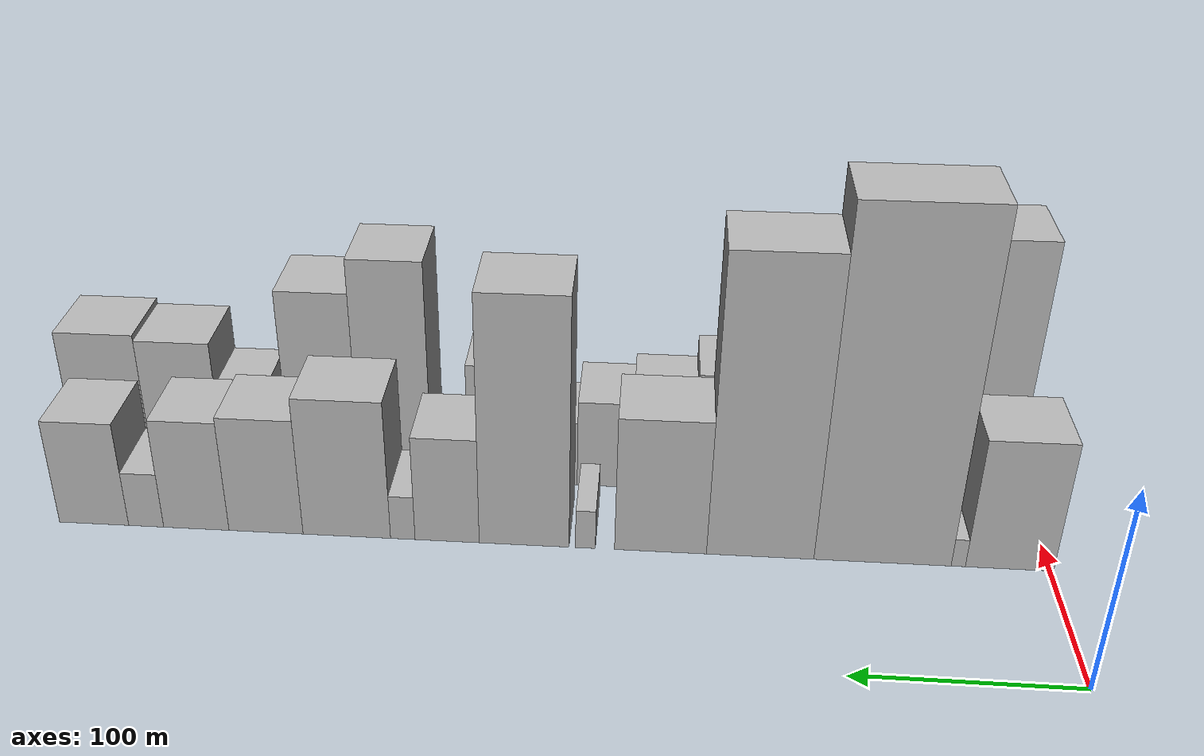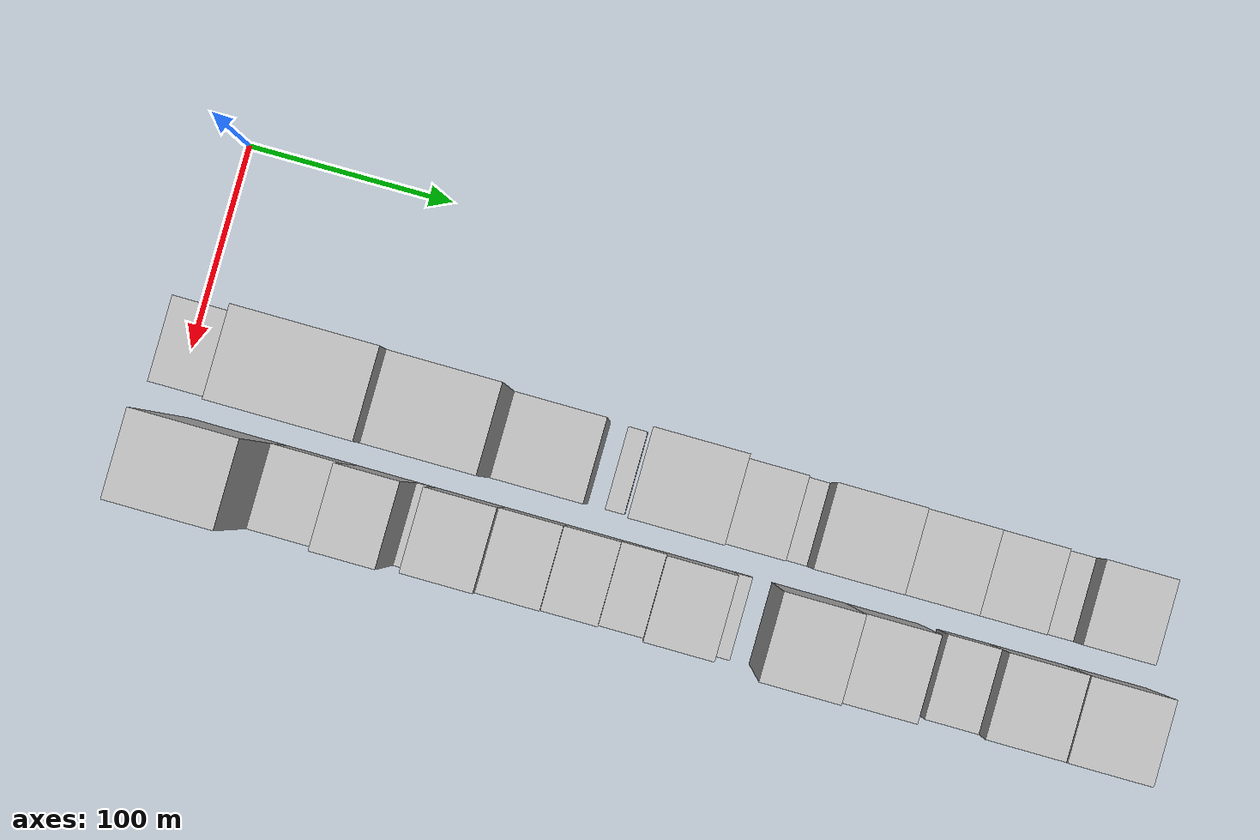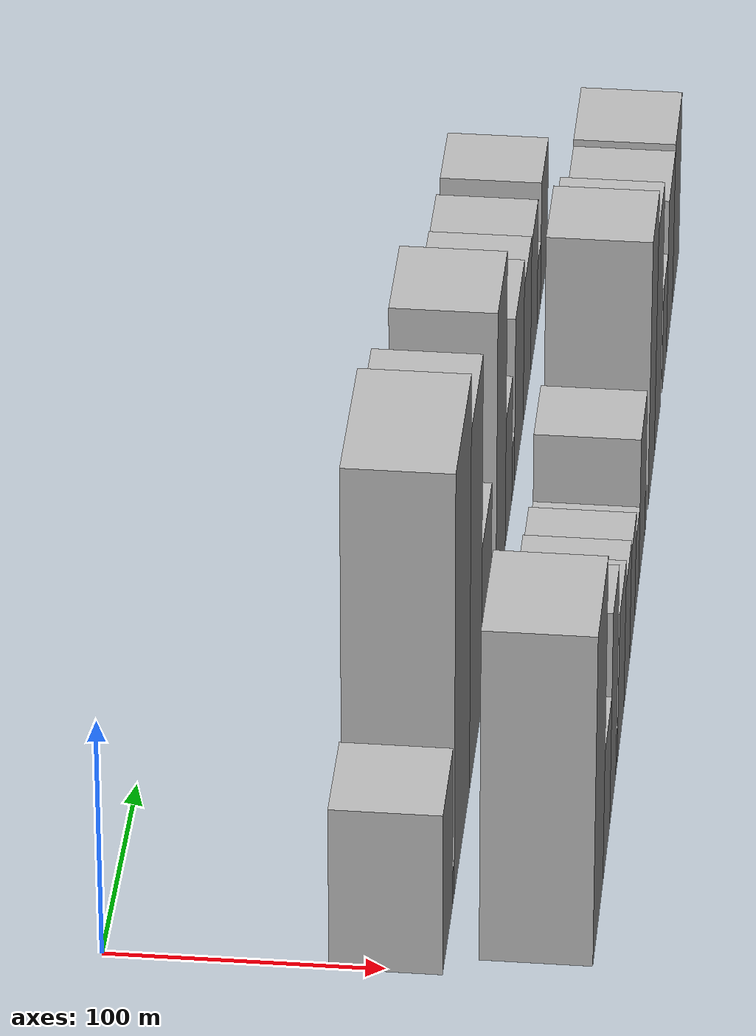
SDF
<sdf version="1.6">
 <world name="default">
  <model name="building_14">
   <static>1</static>
   <pose>100.0000 18.4585 0 0.000000 0.000000 0.000000</pose>
   <link name="link">
    <pose>0 0 34.50 0 0 0</pose>
    <collision name="collision"><geometry><box><size>40.0000 39.9605 69.0000</size></box></geometry></collision>
    <visual name="visual">
     <cast_shadows>0</cast_shadows>
     <geometry><box><size>40.0000 39.9605 69.0000</size></box></geometry>
     <material>
      <script>
       <uri>model://HANNAS_wall/materials/scripts</uri>
       <uri>model://HANNAS_wall/materials/textures</uri>
       <name>vrc/HANNAS_wall</name>
      </script>
     </material>
    </visual>
   </link>
  </model>
  <model name="building_15">
   <static>1</static>
   <pose>100.0000 41.6626 0 0.000000 0.000000 0.000000</pose>
   <link name="link">
    <pose>0 0 7.50 0 0 0</pose>
    <collision name="collision"><geometry><box><size>40.0000 6.4477 15.0000</size></box></geometry></collision>
    <visual name="visual">
     <cast_shadows>0</cast_shadows>
     <geometry><box><size>40.0000 6.4477 15.0000</size></box></geometry>
     <material>
      <script>
       <uri>model://HANNAS_wall/materials/scripts</uri>
       <uri>model://HANNAS_wall/materials/textures</uri>
       <name>vrc/HANNAS_wall</name>
      </script>
     </material>
    </visual>
   </link>
  </model>
  <model name="building_16">
   <static>1</static>
   <pose>100.0000 76.2940 0 0.000000 0.000000 0.000000</pose>
   <link name="link">
    <pose>0 0 90.00 0 0 0</pose>
    <collision name="collision"><geometry><box><size>40.0000 62.8152 180.0000</size></box></geometry></collision>
    <visual name="visual">
     <cast_shadows>0</cast_shadows>
     <geometry><box><size>40.0000 62.8152 180.0000</size></box></geometry>
     <material>
      <script>
       <uri>model://HANNAS_wall/materials/scripts</uri>
       <uri>model://HANNAS_wall/materials/textures</uri>
       <name>vrc/HANNAS_wall</name>
      </script>
     </material>
    </visual>
   </link>
  </model>
  <model name="building_17">
   <static>1</static>
   <pose>100.0000 132.5691 0 0.000000 0.000000 0.000000</pose>
   <link name="link">
    <pose>0 0 78.00 0 0 0</pose>
    <collision name="collision"><geometry><box><size>40.0000 49.7349 156.0000</size></box></geometry></collision>
    <visual name="visual">
     <cast_shadows>0</cast_shadows>
     <geometry><box><size>40.0000 49.7349 156.0000</size></box></geometry>
     <material>
      <script>
       <uri>model://HANNAS_wall/materials/scripts</uri>
       <uri>model://HANNAS_wall/materials/textures</uri>
       <name>vrc/HANNAS_wall</name>
      </script>
     </material>
    </visual>
   </link>
  </model>
  <model name="building_18">
   <static>1</static>
   <pose>100.0000 178.9139 0 0.000000 0.000000 0.000000</pose>
   <link name="link">
    <pose>0 0 36.00 0 0 0</pose>
    <collision name="collision"><geometry><box><size>40.0000 42.9548 72.0000</size></box></geometry></collision>
    <visual name="visual">
     <cast_shadows>0</cast_shadows>
     <geometry><box><size>40.0000 42.9548 72.0000</size></box></geometry>
     <material>
      <script>
       <uri>model://HANNAS_wall/materials/scripts</uri>
       <uri>model://HANNAS_wall/materials/textures</uri>
       <name>vrc/HANNAS_wall</name>
      </script>
     </material>
    </visual>
   </link>
  </model>
  <model name="building_19">
   <static>1</static>
   <pose>100.0000 214.0822 0 0.000000 0.000000 0.000000</pose>
   <link name="link">
    <pose>0 0 10.50 0 0 0</pose>
    <collision name="collision"><geometry><box><size>40.0000 9.3818 21.0000</size></box></geometry></collision>
    <visual name="visual">
     <cast_shadows>0</cast_shadows>
     <geometry><box><size>40.0000 9.3818 21.0000</size></box></geometry>
     <material>
      <script>
       <uri>model://HANNAS_wall/materials/scripts</uri>
       <uri>model://HANNAS_wall/materials/textures</uri>
       <name>vrc/HANNAS_wall</name>
      </script>
     </material>
    </visual>
   </link>
  </model>
  <model name="building_20">
   <static>1</static>
   <pose>100.0000 243.0363 0 0.000000 0.000000 0.000000</pose>
   <link name="link">
    <pose>0 0 66.00 0 0 0</pose>
    <collision name="collision"><geometry><box><size>40.0000 42.5264 132.0000</size></box></geometry></collision>
    <visual name="visual">
     <cast_shadows>0</cast_shadows>
     <geometry><box><size>40.0000 42.5264 132.0000</size></box></geometry>
     <material>
      <script>
       <uri>model://HANNAS_wall/materials/scripts</uri>
       <uri>model://HANNAS_wall/materials/textures</uri>
       <name>vrc/HANNAS_wall</name>
      </script>
     </material>
    </visual>
   </link>
  </model>
  <model name="building_21">
   <static>1</static>
   <pose>100.0000 279.5815 0 0.000000 0.000000 0.000000</pose>
   <link name="link">
    <pose>0 0 28.50 0 0 0</pose>
    <collision name="collision"><geometry><box><size>40.0000 30.5641 57.0000</size></box></geometry></collision>
    <visual name="visual">
     <cast_shadows>0</cast_shadows>
     <geometry><box><size>40.0000 30.5641 57.0000</size></box></geometry>
     <material>
      <script>
       <uri>model://HANNAS_wall/materials/scripts</uri>
       <uri>model://HANNAS_wall/materials/textures</uri>
       <name>vrc/HANNAS_wall</name>
      </script>
     </material>
    </visual>
   </link>
  </model>
  <model name="building_22">
   <static>1</static>
   <pose>100.0000 300.7286 0 0.000000 0.000000 0.000000</pose>
   <link name="link">
    <pose>0 0 12.00 0 0 0</pose>
    <collision name="collision"><geometry><box><size>40.0000 11.7300 24.0000</size></box></geometry></collision>
    <visual name="visual">
     <cast_shadows>0</cast_shadows>
     <geometry><box><size>40.0000 11.7300 24.0000</size></box></geometry>
     <material>
      <script>
       <uri>model://HANNAS_wall/materials/scripts</uri>
       <uri>model://HANNAS_wall/materials/textures</uri>
       <name>vrc/HANNAS_wall</name>
      </script>
     </material>
    </visual>
   </link>
  </model>
  <model name="building_23">
   <static>1</static>
   <pose>100.0000 327.6474 0 0.000000 0.000000 0.000000</pose>
   <link name="link">
    <pose>0 0 37.50 0 0 0</pose>
    <collision name="collision"><geometry><box><size>40.0000 42.1075 75.0000</size></box></geometry></collision>
    <visual name="visual">
     <cast_shadows>0</cast_shadows>
     <geometry><box><size>40.0000 42.1075 75.0000</size></box></geometry>
     <material>
      <script>
       <uri>model://HANNAS_wall/materials/scripts</uri>
       <uri>model://HANNAS_wall/materials/textures</uri>
       <name>vrc/HANNAS_wall</name>
      </script>
     </material>
    </visual>
   </link>
  </model>
  <model name="building_24">
   <static>1</static>
   <pose>100.0000 366.6639 0 0.000000 0.000000 0.000000</pose>
   <link name="link">
    <pose>0 0 31.50 0 0 0</pose>
    <collision name="collision"><geometry><box><size>40.0000 35.9255 63.0000</size></box></geometry></collision>
    <visual name="visual">
     <cast_shadows>0</cast_shadows>
     <geometry><box><size>40.0000 35.9255 63.0000</size></box></geometry>
     <material>
      <script>
       <uri>model://HANNAS_wall/materials/scripts</uri>
       <uri>model://HANNAS_wall/materials/textures</uri>
       <name>vrc/HANNAS_wall</name>
      </script>
     </material>
    </visual>
   </link>
  </model>
  <model name="building_25">
   <static>1</static>
   <pose>100.0000 400.5764 0 0.000000 0.000000 0.000000</pose>
   <link name="link">
    <pose>0 0 30.00 0 0 0</pose>
    <collision name="collision"><geometry><box><size>40.0000 31.8995 60.0000</size></box></geometry></collision>
    <visual name="visual">
     <cast_shadows>0</cast_shadows>
     <geometry><box><size>40.0000 31.8995 60.0000</size></box></geometry>
     <material>
      <script>
       <uri>model://HANNAS_wall/materials/scripts</uri>
       <uri>model://HANNAS_wall/materials/textures</uri>
       <name>vrc/HANNAS_wall</name>
      </script>
     </material>
    </visual>
   </link>
  </model>
  <model name="building_26">
   <static>1</static>
   <pose>100.0000 425.1139 0 0.000000 0.000000 0.000000</pose>
   <link name="link">
    <pose>0 0 15.00 0 0 0</pose>
    <collision name="collision"><geometry><box><size>40.0000 17.1756 30.0000</size></box></geometry></collision>
    <visual name="visual">
     <cast_shadows>0</cast_shadows>
     <geometry><box><size>40.0000 17.1756 30.0000</size></box></geometry>
     <material>
      <script>
       <uri>model://HANNAS_wall/materials/scripts</uri>
       <uri>model://HANNAS_wall/materials/textures</uri>
       <name>vrc/HANNAS_wall</name>
      </script>
     </material>
    </visual>
   </link>
  </model>
  <model name="building_27">
   <static>1</static>
   <pose>100.0000 450.7416 0 0.000000 0.000000 0.000000</pose>
   <link name="link">
    <pose>0 0 28.50 0 0 0</pose>
    <collision name="collision"><geometry><box><size>40.0000 34.0799 57.0000</size></box></geometry></collision>
    <visual name="visual">
     <cast_shadows>0</cast_shadows>
     <geometry><box><size>40.0000 34.0799 57.0000</size></box></geometry>
     <material>
      <script>
       <uri>model://HANNAS_wall/materials/scripts</uri>
       <uri>model://HANNAS_wall/materials/textures</uri>
       <name>vrc/HANNAS_wall</name>
      </script>
     </material>
    </visual>
   </link>
  </model>
  <model name="building_42">
   <static>1</static>
   <pose>152.0000 32.6572 0 0.000000 0.000000 0.000000</pose>
   <link name="link">
    <pose>0 0 70.50 0 0 0</pose>
    <collision name="collision"><geometry><box><size>40.0000 48.8478 141.0000</size></box></geometry></collision>
    <visual name="visual">
     <cast_shadows>0</cast_shadows>
     <geometry><box><size>40.0000 48.8478 141.0000</size></box></geometry>
     <material>
      <script>
       <uri>model://HANNAS_wall/materials/scripts</uri>
       <uri>model://HANNAS_wall/materials/textures</uri>
       <name>vrc/HANNAS_wall</name>
      </script>
     </material>
    </visual>
   </link>
  </model>
  <model name="building_43">
   <static>1</static>
   <pose>152.0000 74.1489 0 0.000000 0.000000 0.000000</pose>
   <link name="link">
    <pose>0 0 28.50 0 0 0</pose>
    <collision name="collision"><geometry><box><size>40.0000 34.1357 57.0000</size></box></geometry></collision>
    <visual name="visual">
     <cast_shadows>0</cast_shadows>
     <geometry><box><size>40.0000 34.1357 57.0000</size></box></geometry>
     <material>
      <script>
       <uri>model://HANNAS_wall/materials/scripts</uri>
       <uri>model://HANNAS_wall/materials/textures</uri>
       <name>vrc/HANNAS_wall</name>
      </script>
     </material>
    </visual>
   </link>
  </model>
  <model name="building_44">
   <static>1</static>
   <pose>152.0000 106.3500 0 0.000000 0.000000 0.000000</pose>
   <link name="link">
    <pose>0 0 46.50 0 0 0</pose>
    <collision name="collision"><geometry><box><size>40.0000 30.2664 93.0000</size></box></geometry></collision>
    <visual name="visual">
     <cast_shadows>0</cast_shadows>
     <geometry><box><size>40.0000 30.2664 93.0000</size></box></geometry>
     <material>
      <script>
       <uri>model://HANNAS_wall/materials/scripts</uri>
       <uri>model://HANNAS_wall/materials/textures</uri>
       <name>vrc/HANNAS_wall</name>
      </script>
     </material>
    </visual>
   </link>
  </model>
  <model name="building_45">
   <static>1</static>
   <pose>152.0000 125.4410 0 0.000000 0.000000 0.000000</pose>
   <link name="link">
    <pose>0 0 9.00 0 0 0</pose>
    <collision name="collision"><geometry><box><size>40.0000 7.9155 18.0000</size></box></geometry></collision>
    <visual name="visual">
     <cast_shadows>0</cast_shadows>
     <geometry><box><size>40.0000 7.9155 18.0000</size></box></geometry>
     <material>
      <script>
       <uri>model://HANNAS_wall/materials/scripts</uri>
       <uri>model://HANNAS_wall/materials/textures</uri>
       <name>vrc/HANNAS_wall</name>
      </script>
     </material>
    </visual>
   </link>
  </model>
  <model name="building_46">
   <static>1</static>
   <pose>152.0000 146.5405 0 0.000000 0.000000 0.000000</pose>
   <link name="link">
    <pose>0 0 33.00 0 0 0</pose>
    <collision name="collision"><geometry><box><size>40.0000 34.2835 66.0000</size></box></geometry></collision>
    <visual name="visual">
     <cast_shadows>0</cast_shadows>
     <geometry><box><size>40.0000 34.2835 66.0000</size></box></geometry>
     <material>
      <script>
       <uri>model://HANNAS_wall/materials/scripts</uri>
       <uri>model://HANNAS_wall/materials/textures</uri>
       <name>vrc/HANNAS_wall</name>
      </script>
     </material>
    </visual>
   </link>
  </model>
  <model name="building_47">
   <static>1</static>
   <pose>152.0000 178.9067 0 0.000000 0.000000 0.000000</pose>
   <link name="link">
    <pose>0 0 27.00 0 0 0</pose>
    <collision name="collision"><geometry><box><size>40.0000 30.4488 54.0000</size></box></geometry></collision>
    <visual name="visual">
     <cast_shadows>0</cast_shadows>
     <geometry><box><size>40.0000 30.4488 54.0000</size></box></geometry>
     <material>
      <script>
       <uri>model://HANNAS_wall/materials/scripts</uri>
       <uri>model://HANNAS_wall/materials/textures</uri>
       <name>vrc/HANNAS_wall</name>
      </script>
     </material>
    </visual>
   </link>
  </model>
  <model name="building_48">
   <static>1</static>
   <pose>152.0000 207.6680 0 0.000000 0.000000 0.000000</pose>
   <link name="link">
    <pose>0 0 24.00 0 0 0</pose>
    <collision name="collision"><geometry><box><size>40.0000 27.0739 48.0000</size></box></geometry></collision>
    <visual name="visual">
     <cast_shadows>0</cast_shadows>
     <geometry><box><size>40.0000 27.0739 48.0000</size></box></geometry>
     <material>
      <script>
       <uri>model://HANNAS_wall/materials/scripts</uri>
       <uri>model://HANNAS_wall/materials/textures</uri>
       <name>vrc/HANNAS_wall</name>
      </script>
     </material>
    </visual>
   </link>
  </model>
  <model name="building_49">
   <static>1</static>
   <pose>152.0000 231.9488 0 0.000000 0.000000 0.000000</pose>
   <link name="link">
    <pose>0 0 18.00 0 0 0</pose>
    <collision name="collision"><geometry><box><size>40.0000 21.4876 36.0000</size></box></geometry></collision>
    <visual name="visual">
     <cast_shadows>0</cast_shadows>
     <geometry><box><size>40.0000 21.4876 36.0000</size></box></geometry>
     <material>
      <script>
       <uri>model://HANNAS_wall/materials/scripts</uri>
       <uri>model://HANNAS_wall/materials/textures</uri>
       <name>vrc/HANNAS_wall</name>
      </script>
     </material>
    </visual>
   </link>
  </model>
  <model name="building_50">
   <static>1</static>
   <pose>152.0000 259.2955 0 0.000000 0.000000 0.000000</pose>
   <link name="link">
    <pose>0 0 33.00 0 0 0</pose>
    <collision name="collision"><geometry><box><size>40.0000 33.2060 66.0000</size></box></geometry></collision>
    <visual name="visual">
     <cast_shadows>0</cast_shadows>
     <geometry><box><size>40.0000 33.2060 66.0000</size></box></geometry>
     <material>
      <script>
       <uri>model://HANNAS_wall/materials/scripts</uri>
       <uri>model://HANNAS_wall/materials/textures</uri>
       <name>vrc/HANNAS_wall</name>
      </script>
     </material>
    </visual>
   </link>
  </model>
  <model name="building_51">
   <static>1</static>
   <pose>152.0000 280.0718 0 0.000000 0.000000 0.000000</pose>
   <link name="link">
    <pose>0 0 9.00 0 0 0</pose>
    <collision name="collision"><geometry><box><size>40.0000 8.3467 18.0000</size></box></geometry></collision>
    <visual name="visual">
     <cast_shadows>0</cast_shadows>
     <geometry><box><size>40.0000 8.3467 18.0000</size></box></geometry>
     <material>
      <script>
       <uri>model://HANNAS_wall/materials/scripts</uri>
       <uri>model://HANNAS_wall/materials/textures</uri>
       <name>vrc/HANNAS_wall</name>
      </script>
     </material>
    </visual>
   </link>
  </model>
  <model name="building_52">
   <static>1</static>
   <pose>152.0000 312.4818 0 0.000000 0.000000 0.000000</pose>
   <link name="link">
    <pose>0 0 60.00 0 0 0</pose>
    <collision name="collision"><geometry><box><size>40.0000 36.4732 120.0000</size></box></geometry></collision>
    <visual name="visual">
     <cast_shadows>0</cast_shadows>
     <geometry><box><size>40.0000 36.4732 120.0000</size></box></geometry>
     <material>
      <script>
       <uri>model://HANNAS_wall/materials/scripts</uri>
       <uri>model://HANNAS_wall/materials/textures</uri>
       <name>vrc/HANNAS_wall</name>
      </script>
     </material>
    </visual>
   </link>
  </model>
  <model name="building_53">
   <static>1</static>
   <pose>152.0000 348.4297 0 0.000000 0.000000 0.000000</pose>
   <link name="link">
    <pose>0 0 51.00 0 0 0</pose>
    <collision name="collision"><geometry><box><size>40.0000 35.4226 102.0000</size></box></geometry></collision>
    <visual name="visual">
     <cast_shadows>0</cast_shadows>
     <geometry><box><size>40.0000 35.4226 102.0000</size></box></geometry>
     <material>
      <script>
       <uri>model://HANNAS_wall/materials/scripts</uri>
       <uri>model://HANNAS_wall/materials/textures</uri>
       <name>vrc/HANNAS_wall</name>
      </script>
     </material>
    </visual>
   </link>
  </model>
  <model name="building_54">
   <static>1</static>
   <pose>152.0000 387.8915 0 0.000000 0.000000 0.000000</pose>
   <link name="link">
    <pose>0 0 24.00 0 0 0</pose>
    <collision name="collision"><geometry><box><size>40.0000 25.5009 48.0000</size></box></geometry></collision>
    <visual name="visual">
     <cast_shadows>0</cast_shadows>
     <geometry><box><size>40.0000 25.5009 48.0000</size></box></geometry>
     <material>
      <script>
       <uri>model://HANNAS_wall/materials/scripts</uri>
       <uri>model://HANNAS_wall/materials/textures</uri>
       <name>vrc/HANNAS_wall</name>
      </script>
     </material>
    </visual>
   </link>
  </model>
  <model name="building_55">
   <static>1</static>
   <pose>152.0000 419.2807 0 0.000000 0.000000 0.000000</pose>
   <link name="link">
    <pose>0 0 36.00 0 0 0</pose>
    <collision name="collision"><geometry><box><size>40.0000 37.2776 72.0000</size></box></geometry></collision>
    <visual name="visual">
     <cast_shadows>0</cast_shadows>
     <geometry><box><size>40.0000 37.2776 72.0000</size></box></geometry>
     <material>
      <script>
       <uri>model://HANNAS_wall/materials/scripts</uri>
       <uri>model://HANNAS_wall/materials/textures</uri>
       <name>vrc/HANNAS_wall</name>
      </script>
     </material>
    </visual>
   </link>
  </model>
  <model name="building_56">
   <static>1</static>
   <pose>152.0000 457.6937 0 0.000000 0.000000 0.000000</pose>
   <link name="link">
    <pose>0 0 37.50 0 0 0</pose>
    <collision name="collision"><geometry><box><size>40.0000 39.5482 75.0000</size></box></geometry></collision>
    <visual name="visual">
     <cast_shadows>0</cast_shadows>
     <geometry><box><size>40.0000 39.5482 75.0000</size></box></geometry>
     <material>
      <script>
       <uri>model://HANNAS_wall/materials/scripts</uri>
       <uri>model://HANNAS_wall/materials/textures</uri>
       <name>vrc/HANNAS_wall</name>
      </script>
     </material>
    </visual>
   </link>
  </model>
 </world>
</sdf>
